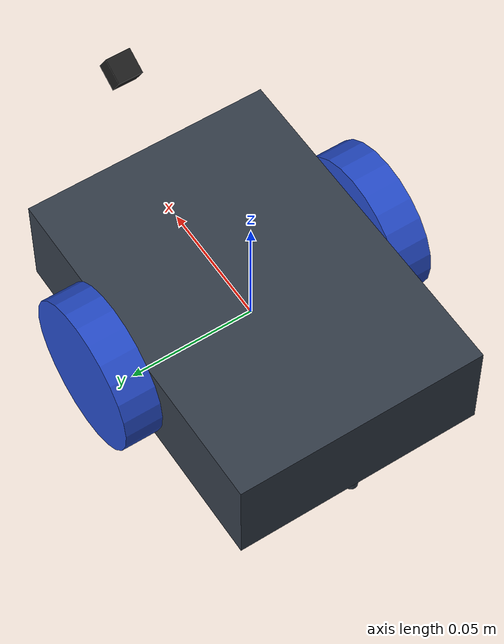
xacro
<?xml version="1.0" ?>
<robot name="rover" xmlns:xacro="http://www.ros.org/wiki/xacro">
  <material name="black">
    <color rgba="0.0 0.0 0.0 1.0"/>
  </material>
  <material name="blue">
    <color rgba="0.203125 0.23828125 0.28515625 1.0"/>
  </material>
  <material name="green">
    <color rgba="0.0 0.8 0.0 1.0"/>
  </material>
  <material name="grey">
    <color rgba="0.2 0.2 0.2 1.0"/>
  </material>
  <material name="orange">
    <color rgba="1.0 0.423529411765 0.0392156862745 1.0"/>
  </material>
  <material name="brown">
    <color rgba="0.870588235294 0.811764705882 0.764705882353 1.0"/>
  </material>
  <material name="red">
    <color rgba="0.80078125 0.12890625 0.1328125 1.0"/>
  </material>
  <material name="white">
    <color rgba="1.0 1.0 1.0 1.0"/>
  </material>

  <gazebo reference="link_chassis">
    <material>Gazebo/Orange</material>
  </gazebo>
  <gazebo reference="link_left_wheel">
    <material>Gazebo/Blue</material>
  </gazebo>
  <gazebo reference="link_right_wheel">
    <material>Gazebo/Blue</material>
  </gazebo>
  <gazebo reference="camera_link">
    <material>Gazebo/Black</material>
  </gazebo>

  <!-- camera -->
  <gazebo reference="camera_link">
    <sensor type="camera" name="main_cam">
      <update_rate>30.0</update_rate>
      <camera name="head">
        <horizontal_fov>1.3962634</horizontal_fov>
        <image>
          <width>800</width>
          <height>800</height>
          <format>R8G8B8</format>
        </image>
        <clip>
          <near>0.02</near>
          <far>300</far>
        </clip>
        <noise>
          <type>gaussian</type>
          <!-- Noise is sampled independently per pixel on each frame.
               That pixel's noise value is added to each of its color
               channels, which at that point lie in the range [0,1]. -->
          <mean>0.0</mean>
          <stddev>0.007</stddev>
        </noise>
      </camera>
      <plugin name="camera_controller" filename="libgazebo_ros_camera.so">
        <alwaysOn>true</alwaysOn>
        <updateRate>60.0</updateRate>
        <cameraName>camera1</cameraName>
        <imageTopicName>image_raw</imageTopicName>
        <cameraInfoTopicName>camera_info</cameraInfoTopicName>
        <frameName>camera_link</frameName>
        <hackBaseline>0.07</hackBaseline>
        <distortionK1>0.0</distortionK1>
        <distortionK2>0.0</distortionK2>
        <distortionK3>0.0</distortionK3>
        <distortionT1>0.0</distortionT1>
        <distortionT2>0.0</distortionT2>
      </plugin>
    </sensor>
  </gazebo>

  <link name="link_chassis">
    <!-- pose and inertial -->
    <pose>0 0 0.1 0 0 0</pose>
    <inertial>
      <mass value="2"/>
      <origin rpy="0 0 0" xyz="0 0 0"/>
      <inertia ixx="0.001933" ixy="0" ixz="0" iyy="0.003533" iyz="0" izz="0.004933"/>
    </inertial>
    <!-- body -->
    <collision name="collision_chassis">
      <geometry>
        <box size="0.14 0.1 0.04"/>
      </geometry>
    </collision>
    <visual>
      <origin rpy="0 0 0" xyz="0 0 0"/>
      <geometry>
        <box size="0.14 0.1 0.04"/>
      </geometry>
      <material name="blue"/>
    </visual>
    <!-- front cylinder that holds the caster-->
    <collision name="f_caster_wheel_hold">
     <origin rpy=" 0 0 0" xyz="0.065 0 -0.025"/>
      <geometry>
        <cylinder length="0.0075" radius="0.0025"/>
      </geometry>
      <surface>
        <friction>
          <ode>
            <mu>0</mu>
            <mu2>0</mu2>
            <slip1>0.0</slip1>
            <slip2>0.0</slip2>
          </ode>
        </friction>
      </surface>
    </collision>
    <visual>
      <origin rpy="0 0 0" xyz="0.065 0 -0.025"/>
      <geometry>
        <cylinder length="0.0075" radius="0.0025"/>
      </geometry>
      <material name="blue"/>
    </visual>
    <!-- rear cylinder that holds the caster-->
    <collision name="r_caster_wheel_hold">
     <origin rpy=" 0 0 0" xyz="-0.065 0 -0.025"/>
      <geometry>
        <cylinder length="0.0075" radius="0.0025"/>
      </geometry>
      <surface>
        <friction>
          <ode>
            <mu>0</mu>
            <mu2>0</mu2>
            <slip1>0.0</slip1>
            <slip2>0.0</slip2>
          </ode>
        </friction>
      </surface>
    </collision>
    <visual>
      <origin rpy="0 0 0" xyz="-0.065 0 -0.025"/>
      <geometry>
        <cylinder length="0.0075" radius="0.0025"/>
      </geometry>
      <material name="blue"/>
    </visual>
    <!-- caster front -->
    <collision name="caster_front_collision">
      <origin rpy=" 0 0 0" xyz="0.065 0 -0.0275"/>
      <geometry>
        <sphere radius="0.00025"/>
      </geometry>
      <surface>
        <friction>
          <ode>
            <mu>0</mu>
            <mu2>0</mu2>
            <slip1>0.0</slip1>
            <slip2>0.0</slip2>
          </ode>
        </friction>
      </surface>
    </collision>
    <visual name="caster_front_visual">
      <origin rpy=" 0 0 0" xyz="0.065 0 -0.0275"/>
      <geometry>
        <sphere radius="0.00025"/>
      </geometry>
    </visual>
    <!-- caster rear -->
    <collision name="caster_rear_collision">
      <origin rpy=" 0 0 0" xyz="-0.065 0.0 -0.0275"/>
      <geometry>
        <sphere radius="0.00025"/>
      </geometry>
      <surface>
        <friction>
          <ode>
            <mu>0</mu>
            <mu2>0</mu2>
            <slip1>0.0</slip1>
            <slip2>0.0</slip2>
          </ode>
        </friction>
      </surface>
    </collision>
    <visual name="caster_rear_visual">
      <origin rpy=" 0 0 0" xyz="-0.065 0.0 -0.0275"/>
      <geometry>
        <sphere radius="0.00025"/>
      </geometry>
    </visual>
  </link>

  <link name="link_right_wheel">
    <inertial>
      <mass value="0.5"/>
      <origin rpy="0 1.5707 1.5707" xyz="0 0 0"/>
      <inertia ixx="0.00012917" ixy="0" ixz="0" iyy="0.00012917" iyz="0" izz="0.000225"/>
    </inertial>
    <collision name="link_right_wheel_collision">
      <origin rpy="0 1.5707 1.5707" xyz="0 0 0"/>
      <geometry>
        <cylinder length="0.015" radius="0.03"/>
      </geometry>
    </collision>
    <visual name="link_right_wheel_visual">
      <origin rpy="0 1.5707 1.5707" xyz="0 0 0"/>
      <geometry>
        <cylinder length="0.015" radius="0.03"/>
      </geometry>
    </visual>
  </link>

  <joint name="joint_right_wheel" type="continuous">
    <origin rpy="0 0 0" xyz="0.01 -0.0575 0.0"/>
    <child link="link_right_wheel"/>
    <parent link="link_chassis"/>
    <axis rpy="0 0 0" xyz="0 1 0"/>
    <limit effort="5" velocity="10"/>
    <joint_properties damping="0.0" friction="0.0"/>
  </joint>

  <link name="link_left_wheel">
    <inertial>
      <mass value="0.5"/>
      <origin rpy="0 1.5707 1.5707" xyz="0 0 0"/>
      <inertia ixx="0.00012917" ixy="0" ixz="0" iyy="0.00012917" iyz="0" izz="0.000225"/>
    </inertial>
    <collision name="link_left_wheel_collision">
      <origin rpy="0 1.5707 1.5707" xyz="0 0 0"/>
      <geometry>
        <cylinder length="0.015" radius="0.03"/>
      </geometry>
    </collision>
    <visual name="link_left_wheel_visual">
      <origin rpy="0 1.5707 1.5707" xyz="0 0 0"/>
      <geometry>
        <cylinder length="0.015" radius="0.03"/>
      </geometry>
    </visual>
  </link>

  <joint name="joint_left_wheel" type="continuous">
    <origin rpy="0 0 0" xyz="0.01 0.0575 0.0"/>
    <child link="link_left_wheel"/>
    <parent link="link_chassis"/>
    <axis rpy="0 0 0" xyz="0 1 0"/>
    <limit effort="5" velocity="10"/>
    <joint_properties damping="0.0" friction="0.0"/>
  </joint>

  <!-- Camera -->
  <link name="camera_link">
	<inertial>
		<mass value = "1e-5"/>
		<origin xyz="0 0 0" rpy="0 0 0"/>
		<inertia ixx="1e-6" ixy="0" ixz="0" iyy="1e-6" iyz="0" izz="1e-6" />
	</inertial>
    <collision name = "camera_link_collision">
      	<origin xyz="0 0 0" rpy="0 0 0"/>
      	<geometry>
    		<box size="0.01 0.01 0.01"/>
      	</geometry>
    </collision>
    <visual name = "camera_link_visual">
      	<origin xyz="0 0 0" rpy="0 0 0"/>
      	<geometry>
    		<box size="0.01 0.01 0.01"/>
      	</geometry>
     </visual>
  </link>

  <joint name="camera_joint" type="fixed">
	    <origin xyz="0.085 0 0.05" rpy="0 1.0466 0"/>
	    <child link="camera_link"/>
	    <parent link="link_chassis"/>
            <axis rpy = "0 0 0" xyz="0 1 0" />
  </joint>

  <transmission name = "joint_left_wheel_trans">
  	<type> transmission_interface/SimpleTransmission </type>
        <joint name = "joint_left_wheel">
        	<hardwareInterface> hardware_interface/VelocityJointInterface </hardwareInterface>
        </joint>
        <actuator name = "joint_left_wheel_motor">
                <hardwareInterface> hardware_interface/VelocityJointInterface </hardwareInterface>
  		<mechanicalReduction>1</mechanicalReduction>
	</actuator>
  </transmission>

  <transmission name = "joint_right_wheel_trans">
  	<type> transmission_interface/SimpleTransmission </type>
        <joint name = "joint_right_wheel">
        	<hardwareInterface> hardware_interface/VelocityJointInterface </hardwareInterface>
        </joint>
        <actuator name = "joint_right_wheel_motor">
                <hardwareInterface> hardware_interface/VelocityJointInterface </hardwareInterface>
  		<mechanicalReduction>1</mechanicalReduction>
	</actuator>
  </transmission>

<gazebo>
  <plugin name="gazebo_ros_control" filename="libgazebo_ros_control.so">
    <robotNamespace>/rover</robotNamespace>
  </plugin>
</gazebo>
</robot>
